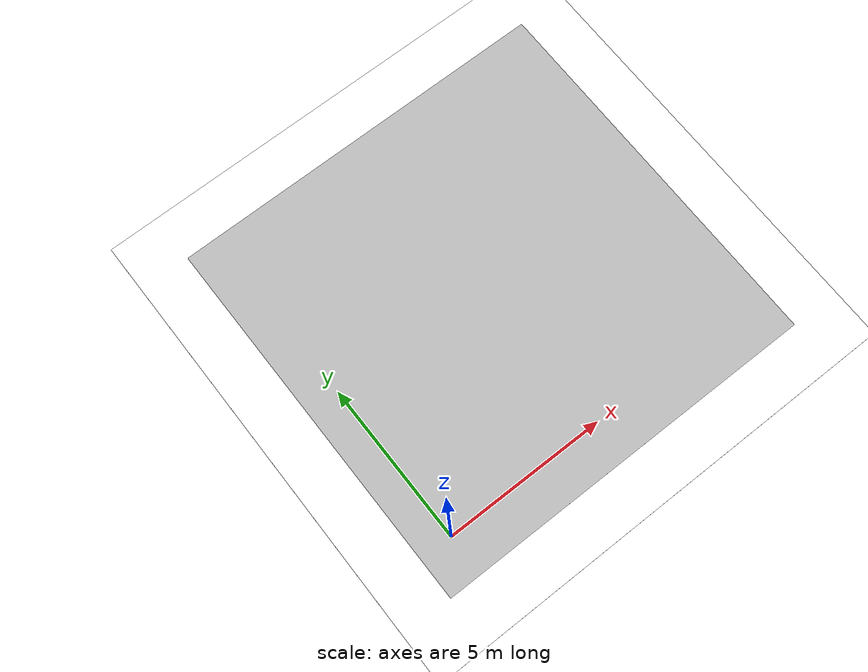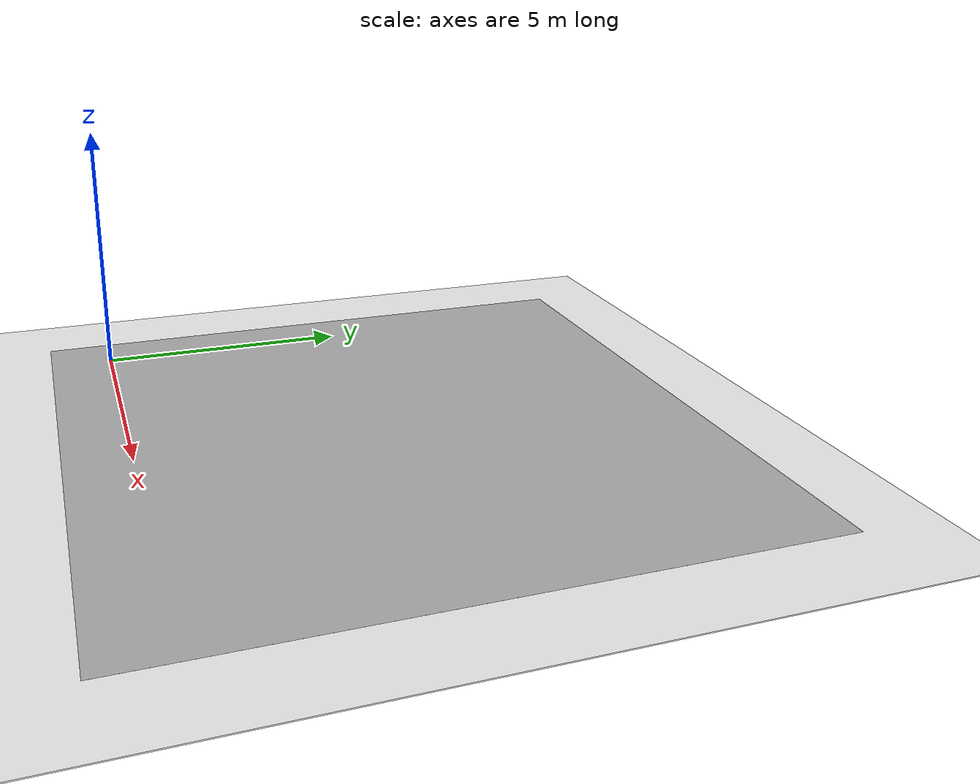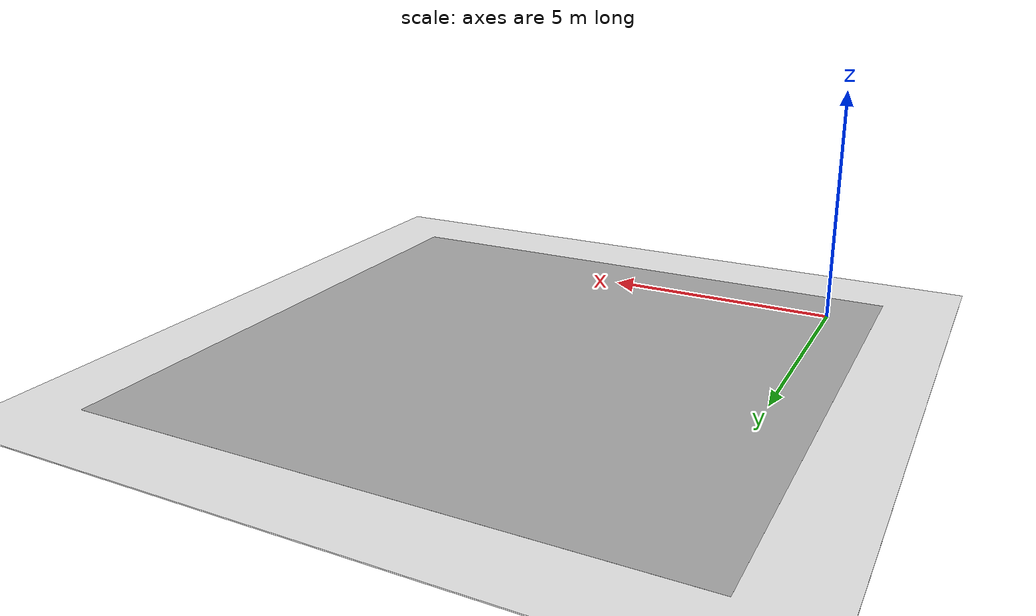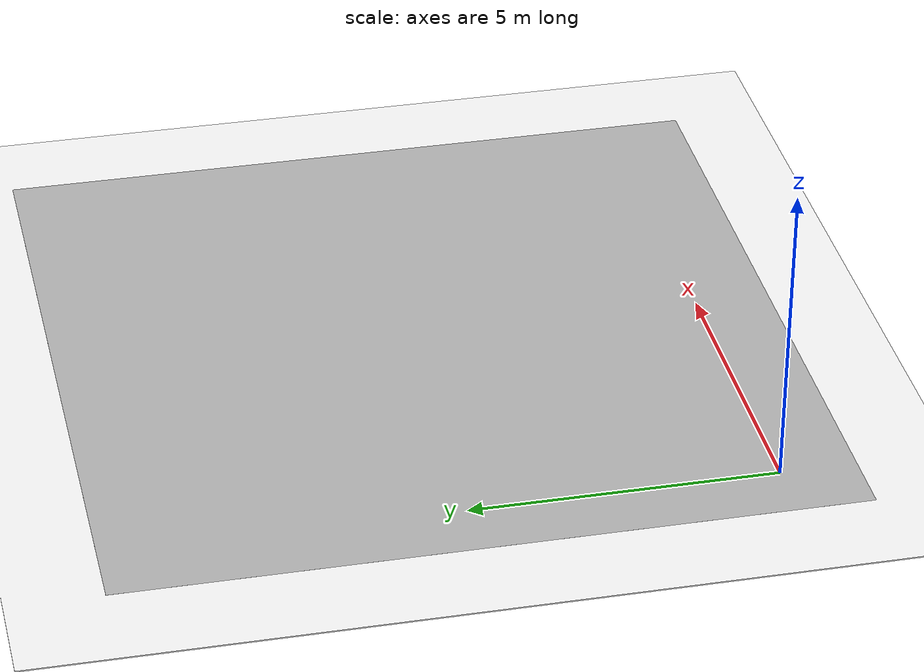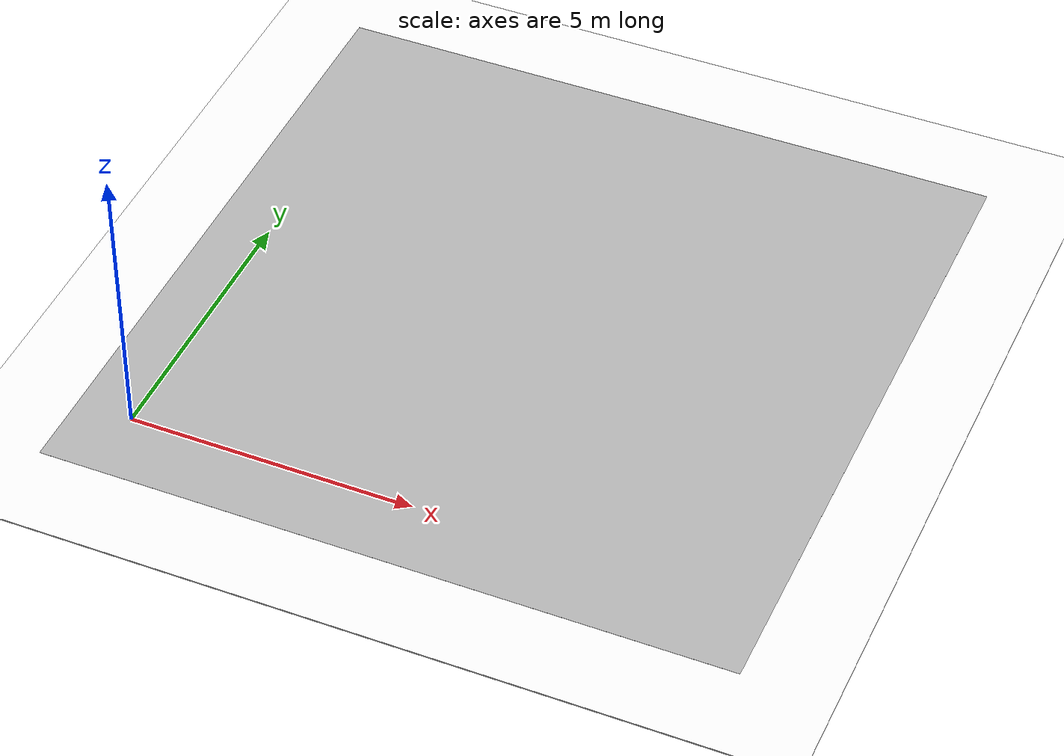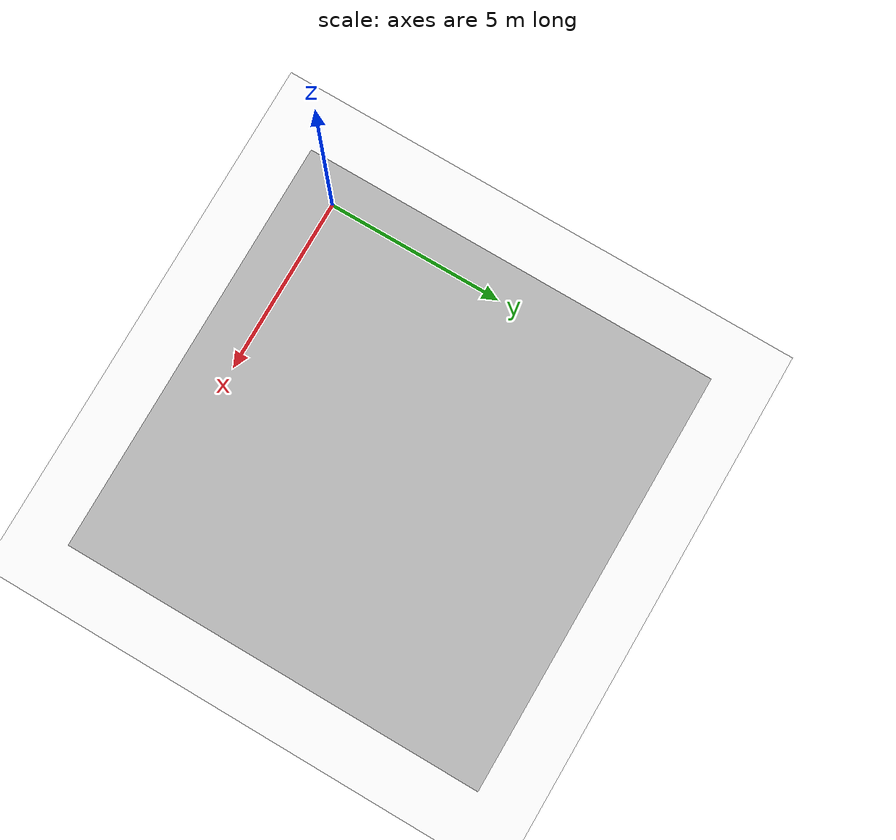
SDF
<?xml version="1.0" ?>
<sdf version="1.5">
  <world name="default">
    <!-- A global light source -->
    <include>
      <uri>model://sun</uri>
    </include>

    <!-- Ground plane -->
    <include>
      <uri>model://parquet_plane</uri>
      <pose>0 0 -0.01 0 0 0</pose>
    </include>

    <!-- Boundary -->
    <include>
      <uri>model://boundary</uri>
    </include>

    <scene>
      <ambient>0.8 0.8 0.8 1</ambient>
      <background>0.8 0.9 1 1</background>
      <shadows>false</shadows>
      <grid>false</grid>
      <origin_visual>false</origin_visual>
    </scene>

    <physics name='default_physics' default='0' type='ode'>
      <gravity>0 0 -9.8066</gravity>
      <ode>
        <solver>
          <type>quick</type>
          <iters>10</iters>
          <sor>1.3</sor>
          <use_dynamic_moi_rescaling>0</use_dynamic_moi_rescaling>
        </solver>
        <constraints>
          <cfm>0</cfm>
          <erp>0.2</erp>
          <contact_max_correcting_vel>100</contact_max_correcting_vel>
          <contact_surface_layer>0.001</contact_surface_layer>
        </constraints>
      </ode>
      <max_step_size>0.004</max_step_size>
      <real_time_factor>1</real_time_factor>
      <real_time_update_rate>250</real_time_update_rate>
      <magnetic_field>6.0e-6 2.3e-5 -4.2e-5</magnetic_field>
    </physics>
  </world>
</sdf>

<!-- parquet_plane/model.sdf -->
<sdf version="1.10">
  <model name="parquet_plane">
    <static>true</static>
    <link name="link">
      <collision name="collision">
        <geometry>
          <box>
            <size>200 200 0.02</size>
          </box>
        </geometry>
      </collision>
      <visual name="visual">
        <cast_shadows>false</cast_shadows>
        <geometry>
          <box>
            <size>200 200 0.02</size>
          </box>
        </geometry>
        <material>
          <ambient>0.8 0.8 0.8 1</ambient>
          <diffuse>1.0 1.0 1.0 1</diffuse>
          <specular>0.1 0.1 0.1 1</specular>
          <pbr>
            <metal>
              <albedo_map>model://parquet_plane/materials/textures/grass.png</albedo_map>
              <metalness>0.0</metalness>
              <roughness>0.9</roughness>
            </metal>
          </pbr>
        </material>
      </visual>
    </link>
  </model>
</sdf>

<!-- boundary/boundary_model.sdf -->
<sdf version="1.5">
    <model name="boundary">
        <pose>5 4.75 0.0 0 0 0</pose>
        <static>True</static>
        <link name="boundary_link">
            <visual name="boundary_vis">
                <geometry>
                    <box>
                        <size>12 12 1e-3</size>
                    </box>
                </geometry>
                <material>
                    <script>
                        <uri>model://boundary/materials/scripts</uri>
                        <uri>model://boundary/materials/textures</uri>
                        <name>boundary</name>
                    </script>
                </material>
            </visual>
        </link>
    </model>
</sdf>
